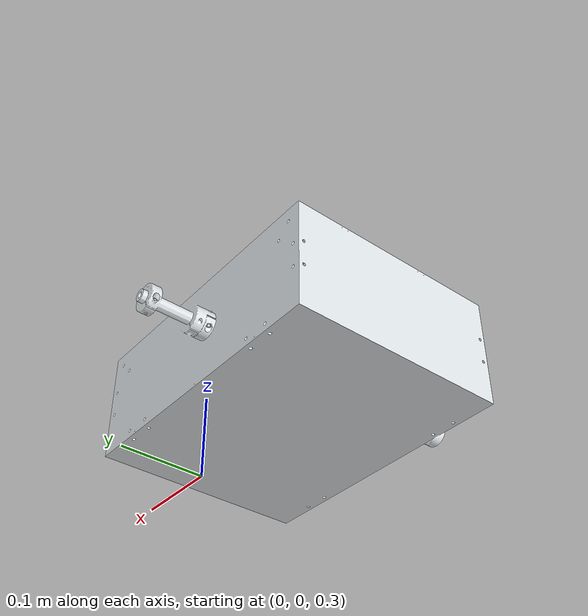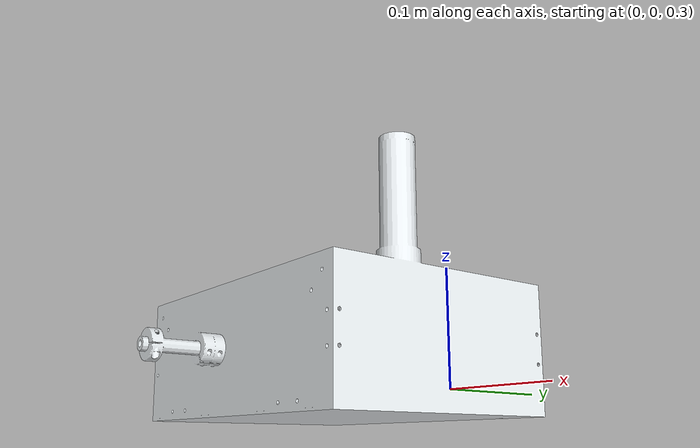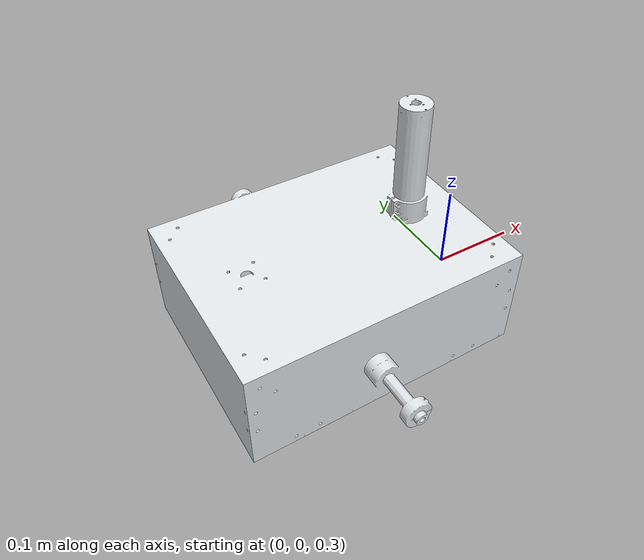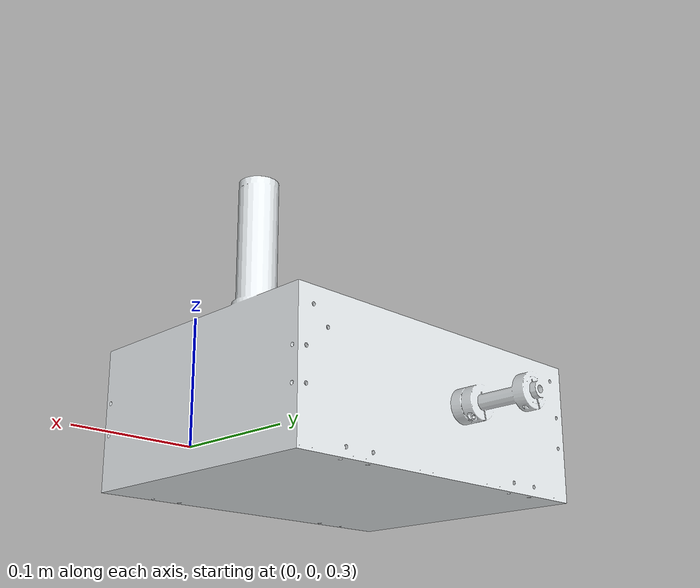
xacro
<?xml version="1.0" encoding="utf-8"?>

<robot
  xmlns:xacro="http://ros.org/wiki/xacro"
  name="oslr_base">

  <!-- ********************************* GEOMETRY ********************************* -->
  <link
    name="base_footprint">
  </link>
  <joint name="base_footprint_to_link" type="fixed">
    <parent link="base_footprint"/>
    <child link="base_link"/>
    <origin
        xyz="0 0 0.4"
        rpy="0 0 0" />
  </joint>

  <link
    name="base_link">
    <inertial>
      <origin
        xyz="-0.14756 -6.6173E-06 -0.048928"
        rpy="0 0 0" />
      <mass
        value="1.9413" />
      <inertia
        ixx="0.0077101"
        ixy="2.0608E-08"
        ixz="9.3168E-08"
        iyy="0.011398"
        iyz="-3.7258E-09"
        izz="0.017109" />
    </inertial>
    <visual>
      <origin
        xyz="0 0 0"
        rpy="0 0 0" />
      <geometry>
        <mesh
          filename="package://oslr_description/models/oslr/meshes/base_link.STL" />
      </geometry>
      <material
        name="">
        <color
          rgba="0.89804 0.91765 0.92941 1" />
      </material>
    </visual>
    <collision>
      <origin
        xyz="0 0 0"
        rpy="0 0 0" />
      <geometry>
        <mesh
          filename="package://oslr_description/models/oslr/meshes/base_link.STL" />
      </geometry>
    </collision>
  </link>

</robot>
